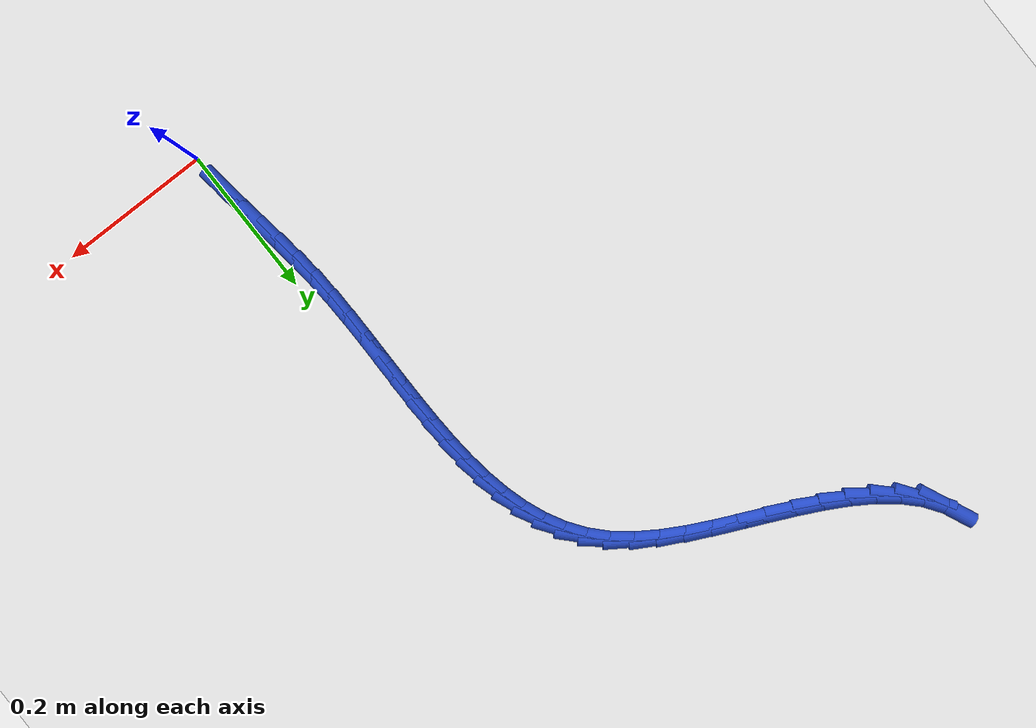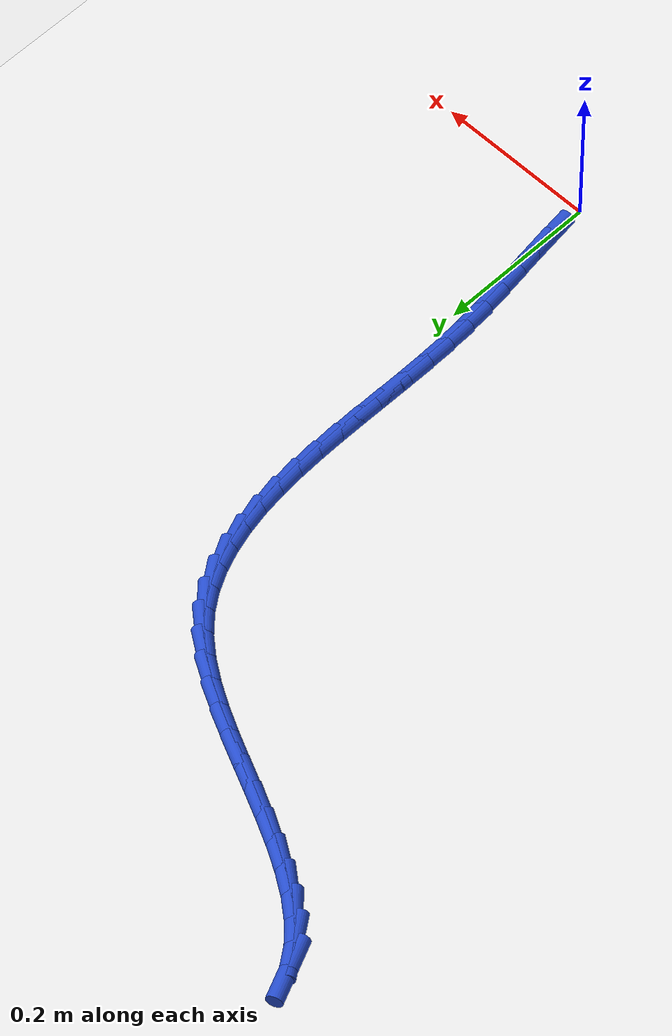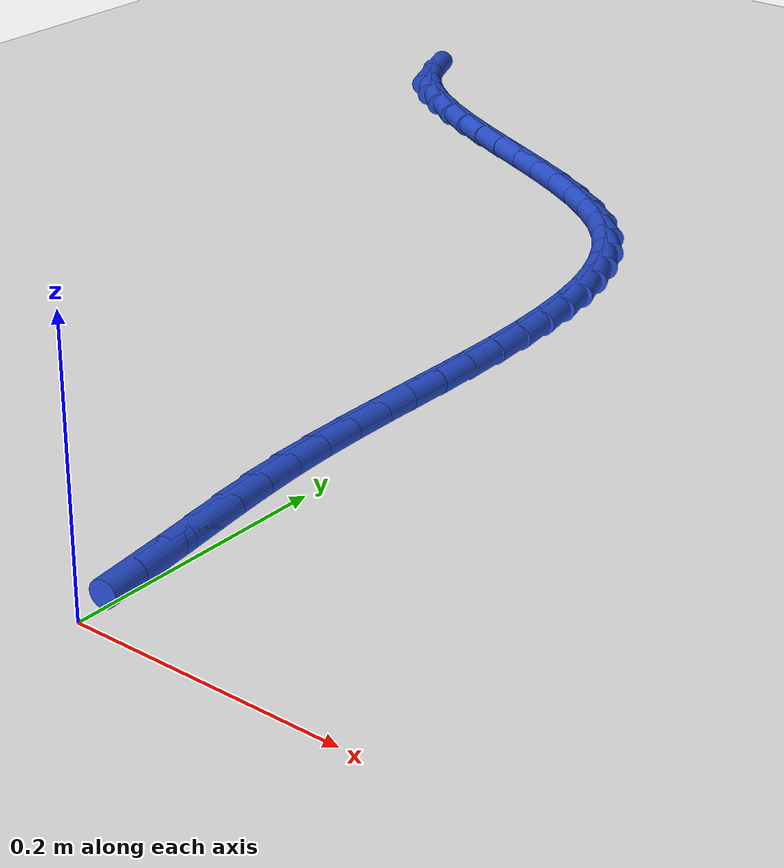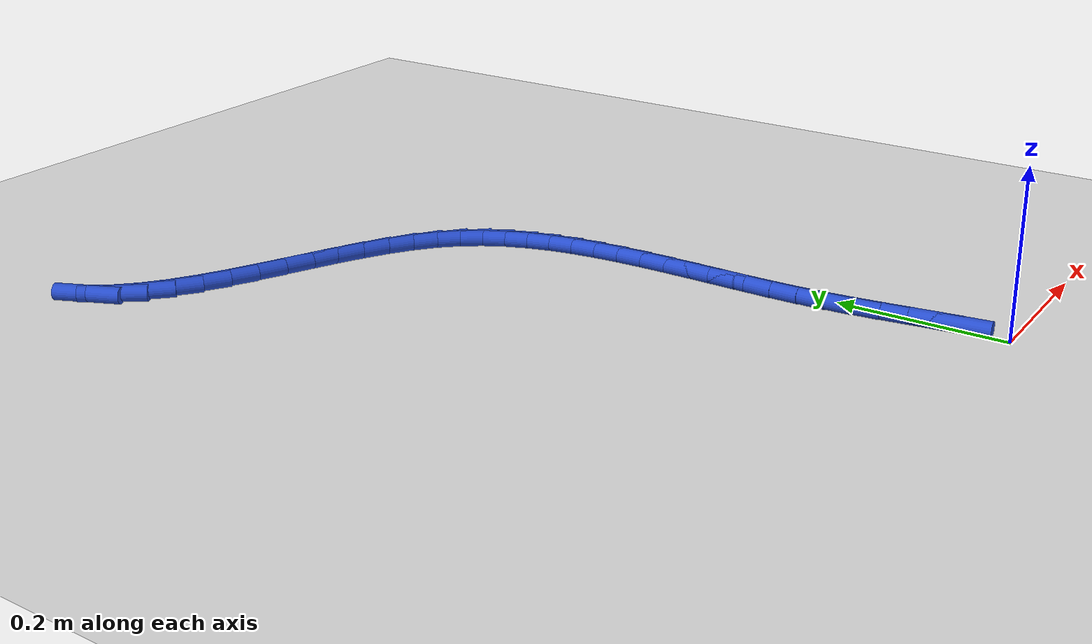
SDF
<sdf version="1.6">
 <world name="default">
  <model name="ground_plane">
   <static>1</static>
   <link name="link">
    <collision name="collision">
     <geometry><plane><normal>0 0 1</normal><size>100 100</size></plane></geometry>
     <surface><friction><ode><mu>100</mu><mu2>50</mu2></ode></friction></surface>
    </collision>
    <visual name="visual">
     <cast_shadows>0</cast_shadows>
     <geometry><plane><normal>0 0 1</normal><size>100 100</size></plane></geometry>
     <material>
      <script><uri>file://media/materials/scripts/gazebo.material</uri><name>Gazebo/WhiteGlow</name></script>
     </material>
    </visual>
   </link>
  </model>
  <model name="line">
   <link name="link_2">
    <pose>-0.00501331716304407 0.059683459835594886 0.01 0 1.57 -1.442875377174035</pose>
    <collision name="collision">
     <geometry><cylinder><radius>0.01</radius><length>0.08</length></cylinder></geometry>
    </collision>
    <visual name="visual">
     <material>
      <script><name>Gazebo/Blue</name><uri>file://media/materials/scripts/gazebo.material</uri></script>
     </material>
     <geometry><cylinder><radius>0.01</radius><length>0.08</length></cylinder></geometry>
    </visual>
   </link>
   <link name="link_3">
    <pose>-0.008849241074130565 0.08950639086981199 0.01 0 1.57 -1.4310051539160469</pose>
    <collision name="collision">
     <geometry><cylinder><radius>0.01</radius><length>0.08</length></cylinder></geometry>
    </collision>
    <visual name="visual">
     <material>
      <script><name>Gazebo/Blue</name><uri>file://media/materials/scripts/gazebo.material</uri></script>
     </material>
     <geometry><cylinder><radius>0.01</radius><length>0.08</length></cylinder></geometry>
    </visual>
   </link>
   <link name="link_4">
    <pose>-0.013068344337759637 0.11949100771072883 0.01 0 1.57 -1.4321455267452092</pose>
    <collision name="collision">
     <geometry><cylinder><radius>0.01</radius><length>0.08</length></cylinder></geometry>
    </collision>
    <visual name="visual">
     <material>
      <script><name>Gazebo/Blue</name><uri>file://media/materials/scripts/gazebo.material</uri></script>
     </material>
     <geometry><cylinder><radius>0.01</radius><length>0.08</length></cylinder></geometry>
    </visual>
   </link>
   <link name="link_5">
    <pose>-0.017293378803556 0.14976797415516044 0.01 0 1.57 -1.445921154118871</pose>
    <collision name="collision">
     <geometry><cylinder><radius>0.01</radius><length>0.08</length></cylinder></geometry>
    </collision>
    <visual name="visual">
     <material>
      <script><name>Gazebo/Blue</name><uri>file://media/materials/scripts/gazebo.material</uri></script>
     </material>
     <geometry><cylinder><radius>0.01</radius><length>0.08</length></cylinder></geometry>
    </visual>
   </link>
   <link name="link_6">
    <pose>-0.02114709632114435 0.18046795399992172 0.01 0 1.57 -1.471768061203181</pose>
    <collision name="collision">
     <geometry><cylinder><radius>0.01</radius><length>0.08</length></cylinder></geometry>
    </collision>
    <visual name="visual">
     <material>
      <script><name>Gazebo/Blue</name><uri>file://media/materials/scripts/gazebo.material</uri></script>
     </material>
     <geometry><cylinder><radius>0.01</radius><length>0.08</length></cylinder></geometry>
    </visual>
   </link>
   <link name="link_7">
    <pose>-0.0242522487401494 0.21172161104182766 0.01 0 1.57 -1.5078299508047135</pose>
    <collision name="collision">
     <geometry><cylinder><radius>0.01</radius><length>0.08</length></cylinder></geometry>
    </collision>
    <visual name="visual">
     <material>
      <script><name>Gazebo/Blue</name><uri>file://media/materials/scripts/gazebo.material</uri></script>
     </material>
     <geometry><cylinder><radius>0.01</radius><length>0.08</length></cylinder></geometry>
    </visual>
   </link>
   <link name="link_8">
    <pose>-0.026264977510847408 0.24364449110612799 0.01 0 1.57 -1.540823182527928</pose>
    <collision name="collision">
     <geometry><cylinder><radius>0.01</radius><length>0.08</length></cylinder></geometry>
    </collision>
    <visual name="visual">
     <material>
      <script><name>Gazebo/Blue</name><uri>file://media/materials/scripts/gazebo.material</uri></script>
     </material>
     <geometry><cylinder><radius>0.01</radius><length>0.08</length></cylinder></geometry>
    </visual>
   </link>
   <link name="link_9">
    <pose>-0.027240208713082564 0.27617158036557987 0.01 0 1.57 -1.5630544737676968</pose>
    <collision name="collision">
     <geometry><cylinder><radius>0.01</radius><length>0.08</length></cylinder></geometry>
    </collision>
    <visual name="visual">
     <material>
      <script><name>Gazebo/Blue</name><uri>file://media/materials/scripts/gazebo.material</uri></script>
     </material>
     <geometry><cylinder><radius>0.01</radius><length>0.08</length></cylinder></geometry>
    </visual>
   </link>
   <link name="link_10">
    <pose>-0.027495288260476734 0.3091190478909748 0.01 0 1.57 1.566483291200255</pose>
    <collision name="collision">
     <geometry><cylinder><radius>0.01</radius><length>0.08</length></cylinder></geometry>
    </collision>
    <visual name="visual">
     <material>
      <script><name>Gazebo/Blue</name><uri>file://media/materials/scripts/gazebo.material</uri></script>
     </material>
     <geometry><cylinder><radius>0.01</radius><length>0.08</length></cylinder></geometry>
    </visual>
   </link>
   <link name="link_11">
    <pose>-0.02735217253926407 0.342300975247039 0.01 0 1.57 1.5641954142616727</pose>
    <collision name="collision">
     <geometry><cylinder><radius>0.01</radius><length>0.08</length></cylinder></geometry>
    </collision>
    <visual name="visual">
     <material>
      <script><name>Gazebo/Blue</name><uri>file://media/materials/scripts/gazebo.material</uri></script>
     </material>
     <geometry><cylinder><radius>0.01</radius><length>0.08</length></cylinder></geometry>
    </visual>
   </link>
   <link name="link_12">
    <pose>-0.02713281793567875 0.37553144399849886 0.01 0 1.57 -1.569999698455388</pose>
    <collision name="collision">
     <geometry><cylinder><radius>0.01</radius><length>0.08</length></cylinder></geometry>
    </collision>
    <visual name="visual">
     <material>
      <script><name>Gazebo/Blue</name><uri>file://media/materials/scripts/gazebo.material</uri></script>
     </material>
     <geometry><cylinder><radius>0.01</radius><length>0.08</length></cylinder></geometry>
    </visual>
   </link>
   <link name="link_13">
    <pose>-0.02715918083595494 0.40862453571008106 0.01 0 1.57 -1.5526707415657952</pose>
    <collision name="collision">
     <geometry><cylinder><radius>0.01</radius><length>0.08</length></cylinder></geometry>
    </collision>
    <visual name="visual">
     <material>
      <script><name>Gazebo/Blue</name><uri>file://media/materials/scripts/gazebo.material</uri></script>
     </material>
     <geometry><cylinder><radius>0.01</radius><length>0.08</length></cylinder></geometry>
    </visual>
   </link>
   <link name="link_14">
    <pose>-0.02775321762632684 0.44139433194651195 0.01 0 1.57 -1.524838620631426</pose>
    <collision name="collision">
     <geometry><cylinder><radius>0.01</radius><length>0.08</length></cylinder></geometry>
    </collision>
    <visual name="visual">
     <material>
      <script><name>Gazebo/Blue</name><uri>file://media/materials/scripts/gazebo.material</uri></script>
     </material>
     <geometry><cylinder><radius>0.01</radius><length>0.08</length></cylinder></geometry>
    </visual>
   </link>
   <link name="link_15">
    <pose>-0.029236884693028597 0.473654914272518 0.01 0 1.57 -1.4856167380807048</pose>
    <collision name="collision">
     <geometry><cylinder><radius>0.01</radius><length>0.08</length></cylinder></geometry>
    </collision>
    <visual name="visual">
     <material>
      <script><name>Gazebo/Blue</name><uri>file://media/materials/scripts/gazebo.material</uri></script>
     </material>
     <geometry><cylinder><radius>0.01</radius><length>0.08</length></cylinder></geometry>
    </visual>
   </link>
   <link name="link_16">
    <pose>-0.03193213842229442 0.5052203642528259 0.01 0 1.57 -1.433843181203059</pose>
    <collision name="collision">
     <geometry><cylinder><radius>0.01</radius><length>0.08</length></cylinder></geometry>
    </collision>
    <visual name="visual">
     <material>
      <script><name>Gazebo/Blue</name><uri>file://media/materials/scripts/gazebo.material</uri></script>
     </material>
     <geometry><cylinder><radius>0.01</radius><length>0.08</length></cylinder></geometry>
    </visual>
   </link>
   <link name="link_17">
    <pose>-0.03616093520035844 0.5359047634521618 0.01 0 1.57 -1.3681855094326978</pose>
    <collision name="collision">
     <geometry><cylinder><radius>0.01</radius><length>0.08</length></cylinder></geometry>
    </collision>
    <visual name="visual">
     <material>
      <script><name>Gazebo/Blue</name><uri>file://media/materials/scripts/gazebo.material</uri></script>
     </material>
     <geometry><cylinder><radius>0.01</radius><length>0.08</length></cylinder></geometry>
    </visual>
   </link>
   <link name="link_18">
    <pose>-0.04224523141345487 0.5655221934352526 0.01 0 1.57 -1.287367441417076</pose>
    <collision name="collision">
     <geometry><cylinder><radius>0.01</radius><length>0.08</length></cylinder></geometry>
    </collision>
    <visual name="visual">
     <material>
      <script><name>Gazebo/Blue</name><uri>file://media/materials/scripts/gazebo.material</uri></script>
     </material>
     <geometry><cylinder><radius>0.01</radius><length>0.08</length></cylinder></geometry>
    </visual>
   </link>
   <link name="link_19">
    <pose>-0.05050698344781786 0.593886735766824 0.01 0 1.57 -1.1905823030846974</pose>
    <collision name="collision">
     <geometry><cylinder><radius>0.01</radius><length>0.08</length></cylinder></geometry>
    </collision>
    <visual name="visual">
     <material>
      <script><name>Gazebo/Blue</name><uri>file://media/materials/scripts/gazebo.material</uri></script>
     </material>
     <geometry><cylinder><radius>0.01</radius><length>0.08</length></cylinder></geometry>
    </visual>
   </link>
   <link name="link_20">
    <pose>-0.06126814768968159 0.6208124720116035 0.01 0 1.57 -1.0781147842913603</pose>
    <collision name="collision">
     <geometry><cylinder><radius>0.01</radius><length>0.08</length></cylinder></geometry>
    </collision>
    <visual name="visual">
     <material>
      <script><name>Gazebo/Blue</name><uri>file://media/materials/scripts/gazebo.material</uri></script>
     </material>
     <geometry><cylinder><radius>0.01</radius><length>0.08</length></cylinder></geometry>
    </visual>
   </link>
   <link name="link_21">
    <pose>-0.07485068052528027 0.6461134837343169 0.01 0 1.57 -0.9520417857666799</pose>
    <collision name="collision">
     <geometry><cylinder><radius>0.01</radius><length>0.08</length></cylinder></geometry>
    </collision>
    <visual name="visual">
     <material>
      <script><name>Gazebo/Blue</name><uri>file://media/materials/scripts/gazebo.material</uri></script>
     </material>
     <geometry><cylinder><radius>0.01</radius><length>0.08</length></cylinder></geometry>
    </visual>
   </link>
   <link name="link_22">
    <pose>-0.09157653834084803 0.6696038524996908 0.01 0 1.57 -0.8166756829383677</pose>
    <collision name="collision">
     <geometry><cylinder><radius>0.01</radius><length>0.08</length></cylinder></geometry>
    </collision>
    <visual name="visual">
     <material>
      <script><name>Gazebo/Blue</name><uri>file://media/materials/scripts/gazebo.material</uri></script>
     </material>
     <geometry><cylinder><radius>0.01</radius><length>0.08</length></cylinder></geometry>
    </visual>
   </link>
   <link name="link_23">
    <pose>-0.1117666952873153 0.6910982234052239 0.01 0 1.57 -0.6873337645888159</pose>
    <collision name="collision">
     <geometry><cylinder><radius>0.01</radius><length>0.08</length></cylinder></geometry>
    </collision>
    <visual name="visual">
     <material>
      <script><name>Gazebo/Blue</name><uri>file://media/materials/scripts/gazebo.material</uri></script>
     </material>
     <geometry><cylinder><radius>0.01</radius><length>0.08</length></cylinder></geometry>
    </visual>
   </link>
   <link name="link_24">
    <pose>-0.13547857977845482 0.710562444278915 0.01 0 1.57 -0.5872813566858414</pose>
    <collision name="collision">
     <geometry><cylinder><radius>0.01</radius><length>0.08</length></cylinder></geometry>
    </collision>
    <visual name="visual">
     <material>
      <script><name>Gazebo/Blue</name><uri>file://media/materials/scripts/gazebo.material</uri></script>
     </material>
     <geometry><cylinder><radius>0.01</radius><length>0.08</length></cylinder></geometry>
    </visual>
   </link>
   <link name="link_25">
    <pose>-0.16215180443155472 0.7283168192051274 0.01 0 1.57 -0.5152956075771535</pose>
    <collision name="collision">
     <geometry><cylinder><radius>0.01</radius><length>0.08</length></cylinder></geometry>
    </collision>
    <visual name="visual">
     <material>
      <script><name>Gazebo/Blue</name><uri>file://media/materials/scripts/gazebo.material</uri></script>
     </material>
     <geometry><cylinder><radius>0.01</radius><length>0.08</length></cylinder></geometry>
    </visual>
   </link>
   <link name="link_26">
    <pose>-0.1911375631079629 0.7447323803030238 0.01 0 1.57 -0.4668538863369033</pose>
    <collision name="collision">
     <geometry><cylinder><radius>0.01</radius><length>0.08</length></cylinder></geometry>
    </collision>
    <visual name="visual">
     <material>
      <script><name>Gazebo/Blue</name><uri>file://media/materials/scripts/gazebo.material</uri></script>
     </material>
     <geometry><cylinder><radius>0.01</radius><length>0.08</length></cylinder></geometry>
    </visual>
   </link>
   <link name="link_27">
    <pose>-0.22178704966902724 0.7601801596917661 0.01 0 1.57 -0.43855243625468854</pose>
    <collision name="collision">
     <geometry><cylinder><radius>0.01</radius><length>0.08</length></cylinder></geometry>
    </collision>
    <visual name="visual">
     <material>
      <script><name>Gazebo/Blue</name><uri>file://media/materials/scripts/gazebo.material</uri></script>
     </material>
     <geometry><cylinder><radius>0.01</radius><length>0.08</length></cylinder></geometry>
    </visual>
   </link>
   <link name="link_28">
    <pose>-0.2534514579760957 0.7750311894905167 0.01 0 1.57 -0.42833343813962643</pose>
    <collision name="collision">
     <geometry><cylinder><radius>0.01</radius><length>0.08</length></cylinder></geometry>
    </collision>
    <visual name="visual">
     <material>
      <script><name>Gazebo/Blue</name><uri>file://media/materials/scripts/gazebo.material</uri></script>
     </material>
     <geometry><cylinder><radius>0.01</radius><length>0.08</length></cylinder></geometry>
    </visual>
   </link>
   <link name="link_29">
    <pose>-0.28548198189051627 0.7896565018184383 0.01 0 1.57 -0.43546184774103414</pose>
    <collision name="collision">
     <geometry><cylinder><radius>0.01</radius><length>0.08</length></cylinder></geometry>
    </collision>
    <visual name="visual">
     <material>
      <script><name>Gazebo/Blue</name><uri>file://media/materials/scripts/gazebo.material</uri></script>
     </material>
     <geometry><cylinder><radius>0.01</radius><length>0.08</length></cylinder></geometry>
    </visual>
   </link>
   <link name="link_30">
    <pose>-0.31722981527363675 0.8044271287946925 0.01 0 1.57 -0.4604964189956765</pose>
    <collision name="collision">
     <geometry><cylinder><radius>0.01</radius><length>0.08</length></cylinder></geometry>
    </collision>
    <visual name="visual">
     <material>
      <script><name>Gazebo/Blue</name><uri>file://media/materials/scripts/gazebo.material</uri></script>
     </material>
     <geometry><cylinder><radius>0.01</radius><length>0.08</length></cylinder></geometry>
    </visual>
   </link>
   <link name="link_31">
    <pose>-0.3480461519868053 0.8197141025384421 0.01 0 1.57 -0.5053223352353128</pose>
    <collision name="collision">
     <geometry><cylinder><radius>0.01</radius><length>0.08</length></cylinder></geometry>
    </collision>
    <visual name="visual">
     <material>
      <script><name>Gazebo/Blue</name><uri>file://media/materials/scripts/gazebo.material</uri></script>
     </material>
     <geometry><cylinder><radius>0.01</radius><length>0.08</length></cylinder></geometry>
    </visual>
   </link>
   <link name="link_32">
    <pose>-0.3772821858913696 0.8358884551688491 0.01 0 1.57 -0.5731998730482989</pose>
    <collision name="collision">
     <geometry><cylinder><radius>0.01</radius><length>0.08</length></cylinder></geometry>
    </collision>
    <visual name="visual">
     <material>
      <script><name>Gazebo/Blue</name><uri>file://media/materials/scripts/gazebo.material</uri></script>
     </material>
     <geometry><cylinder><radius>0.01</radius><length>0.08</length></cylinder></geometry>
    </visual>
   </link>
   <link name="link_33">
    <pose>-0.4042891108486777 0.8533212188050762 0.01 0 1.57 -0.6686209416563463</pose>
    <collision name="collision">
     <geometry><cylinder><radius>0.01</radius><length>0.08</length></cylinder></geometry>
    </collision>
    <visual name="visual">
     <material>
      <script><name>Gazebo/Blue</name><uri>file://media/materials/scripts/gazebo.material</uri></script>
     </material>
     <geometry><cylinder><radius>0.01</radius><length>0.08</length></cylinder></geometry>
    </visual>
   </link>
   <link name="link_34">
    <pose>-0.4284181207200775 0.8723834255662852 0.01 0 1.57 -0.79644760408248</pose>
    <collision name="collision">
     <geometry><cylinder><radius>0.01</radius><length>0.08</length></cylinder></geometry>
    </collision>
    <visual name="visual">
     <material>
      <script><name>Gazebo/Blue</name><uri>file://media/materials/scripts/gazebo.material</uri></script>
     </material>
     <geometry><cylinder><radius>0.01</radius><length>0.08</length></cylinder></geometry>
    </visual>
   </link>
   <link name="link_35">
    <pose>-0.4490204093669169 0.8934461075716386 0.01 0 1.57 -0.9594168607564313</pose>
    <collision name="collision">
     <geometry><cylinder><radius>0.01</radius><length>0.08</length></cylinder></geometry>
    </collision>
    <visual name="visual">
     <material>
      <script><name>Gazebo/Blue</name><uri>file://media/materials/scripts/gazebo.material</uri></script>
     </material>
     <geometry><cylinder><radius>0.01</radius><length>0.08</length></cylinder></geometry>
    </visual>
   </link>
   <link name="link_36">
    <pose>-0.46544717065054375 0.9168802969402987 0.01 0 1.57 -1.1535828660022822</pose>
    <collision name="collision">
     <geometry><cylinder><radius>0.01</radius><length>0.08</length></cylinder></geometry>
    </collision>
    <visual name="visual">
     <material>
      <script><name>Gazebo/Blue</name><uri>file://media/materials/scripts/gazebo.material</uri></script>
     </material>
     <geometry><cylinder><radius>0.01</radius><length>0.08</length></cylinder></geometry>
    </visual>
   </link>
  </model>
 </world>
</sdf>
